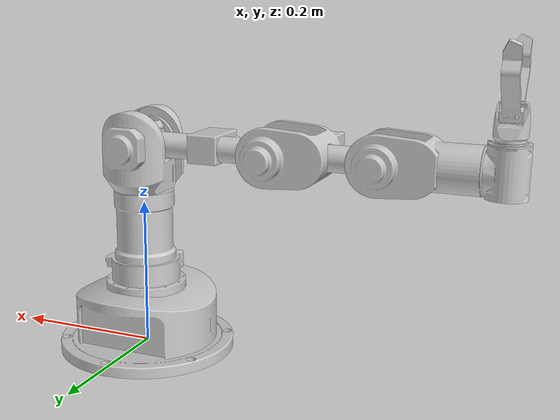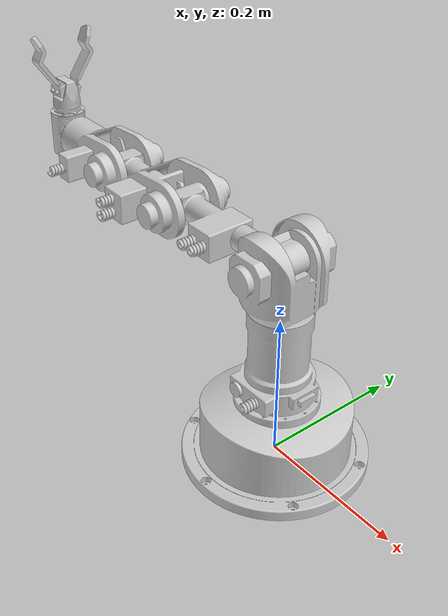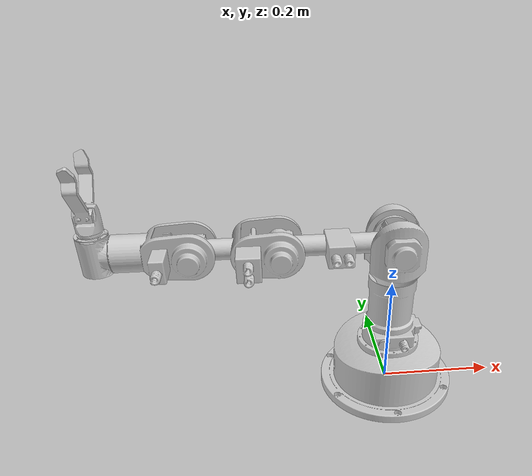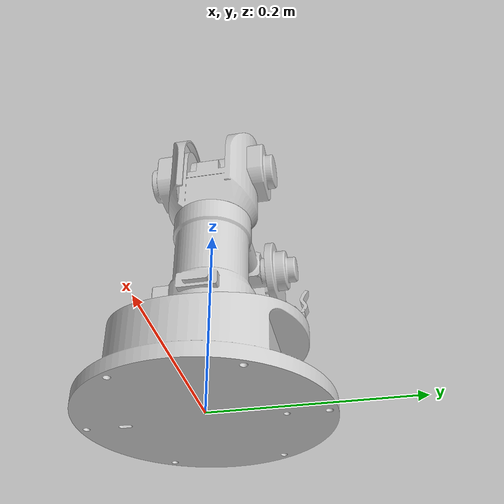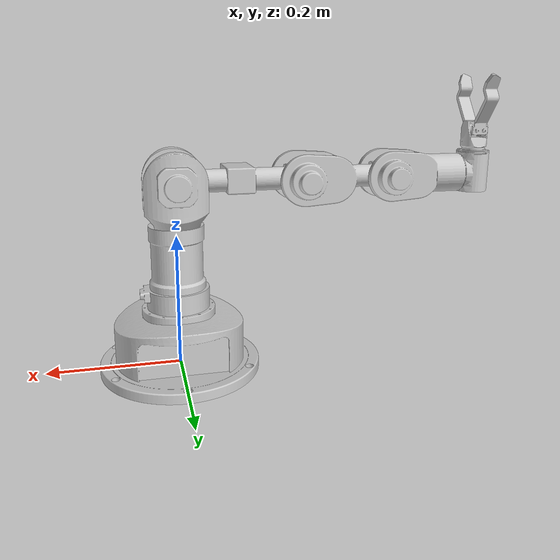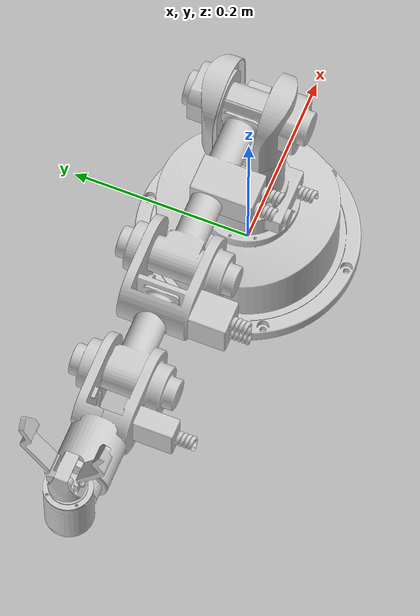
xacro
<?xml version="1.0"?>

<robot xmlns:sensor="http://playerstage.sourceforge.net/gazebo/xmlschema/#sensor"
       xmlns:controller="http://playerstage.sourceforge.net/gazebo/xmlschema/#controller"
       xmlns:interface="http://playerstage.sourceforge.net/gazebo/xmlschema/#interface"
       xmlns:xacro="http://ros.org/wiki/xacro"
       name="katana">

  <include filename="$(find katana_description)/urdf/transmissions.urdf.xacro"/>
  <include filename="$(find katana_description)/urdf/gazebo.urdf.xacro"/>

  <property name="M_PI" value="3.1415926535897931" />

  <!-- all values from the katana manual -->
  <property name="controlbox_height" value="0.08" />
  <property name="base_height" value="0.2015" />
  <property name="link2_length" value="0.19" />
  <property name="link3_length" value="0.139" />
  <property name="link4_length" value="0.1473" />
  <property name="link5_length" value="0.1505" />

  <!-- All inertial values (mass, center of mass and inertia tensor) have been
       calculated from the meshes using MeshLab -->
  <!-- the effort limits have been measured experimentally from the maximum effort the Gazebo controller
       uses in normal conditions -->

  <link name="katana_internal_controlbox_link">
    <visual>
      <origin xyz="0 0 0" rpy="0 0 0" />
      <geometry>
        <mesh filename="package://katana_description/meshes/katana/katana_internal_controlbox.stl" />
      </geometry>

      <material name="grey">
        <color rgba="0.8 0.8 0.8 1"/>
      </material>
    </visual>
    <collision>
      <origin xyz="0 0 0" rpy="0 0 0" />
      <geometry>
        <mesh filename="package://katana_description/meshes/katana/convex/katana_internal_controlbox_convex.stlb" />
      </geometry>
    </collision>
    <inertial>
      <mass value="4.47057045" />
      <origin xyz="0.000024 -0.006508 0.030555" />
      <inertia ixx="0.013760086" ixy="-0.000000539" ixz="-0.000000442"
        iyy="0.015251808" iyz="0.000361753"
        izz="0.023409309" />
    </inertial>
  </link>

  <joint name="katana_base_joint" type="fixed">
    <parent link="katana_internal_controlbox_link"/>
    <child link="katana_base_link"/>
    <origin xyz="0 0 ${controlbox_height}"/>
  </joint>

  <link name="katana_base_link">
    <visual>
      <origin xyz="0 0 0" rpy="0 0 ${M_PI}" />
      <geometry>
        <mesh filename="package://katana_description/meshes/katana/katana_base_link.stl"/>
      </geometry>

      <material name="grey" />
    </visual>
    <collision>
      <origin xyz="0 0 0" rpy="0 0 ${M_PI}" />
      <geometry>
        <mesh filename="package://katana_description/meshes/katana/convex/katana_base_link_convex.stlb"/>
      </geometry>
    </collision>
    <inertial>
      <mass value="1.4047990875" />
      <origin xyz="-0.000327 0.000908 0.058457"/>
      <inertia ixx="0.003000703" ixy="0.000000864" ixz="-0.000011312"
        iyy="0.002974822" iyz="0.000036294"
        izz="0.001434739" />
    </inertial>
  </link>

  <joint name="katana_motor1_pan_joint" type="revolute">
    <!-- Joint 1 in Katana Manual -->
    <parent link="katana_base_link"/>
    <child link="katana_motor1_pan_link" />
    <origin xyz="0 0 ${base_height}" rpy="0 0 ${M_PI}"/>
    <axis xyz="0 0 1"/>
    <limit effort="1.5" lower="-3.025528" upper="2.891097" velocity="2.208932"/>
  </joint>

  <link name="katana_motor1_pan_link">
    <visual>
      <origin xyz="0 0 ${-base_height}" rpy="0 0 0" />
      <geometry>
        <mesh filename="package://katana_description/meshes/katana/katana_motor1_pan_link.stl"/>
      </geometry>

      <material name="grey" />
    </visual>
    <collision>
      <origin xyz="0 0 ${-base_height}" rpy="0 0 0" />
      <geometry>
        <mesh filename="package://katana_description/meshes/katana/convex/katana_motor1_pan_link_convex.stlb"/>
      </geometry>
    </collision>
    <inertial>
      <mass value="0.74793301875" />
      <origin xyz="-0.000410 -0.001285 -0.016774" />
      <inertia ixx="0.001737241" ixy="0.000000421" ixz="0.000000650"
        iyy="0.000998782" iyz="0.000016114"
        izz="0.001349170" />
    </inertial>
  </link>

  <joint name="katana_motor2_lift_joint" type="revolute">
    <!-- Joint 2 in Katana Manual -->
    <parent link="katana_motor1_pan_link" />
    <child link="katana_motor2_lift_link" />
    <origin xyz="0 0 0" rpy="${M_PI/2} 0 0"/>
    <axis xyz="0 0 1"/>
    <limit effort="0.6" lower="-0.135228" upper="2.168572"  velocity="1.190799"/>
  </joint>

  <link name="katana_motor2_lift_link">
      <visual>
        <origin rpy="${-M_PI/2} 0 0" xyz="0 0 0"/>
        <geometry>
          <mesh filename="package://katana_description/meshes/katana/katana_motor2_lift_link.stl"/>
        </geometry>

        <material name="grey" />
      </visual>
      <collision>
        <origin rpy="${-M_PI/2} 0 0" xyz="0 0 0"/>
        <geometry>
          <mesh filename="package://katana_description/meshes/katana/convex/katana_motor2_lift_link_convex.stlb"/>
        </geometry>
      </collision>
      <inertial>
        <mass value="0.80174941875" />
        <origin xyz="0.092420 0.005283 0.000172"/>
        <inertia ixx="0.000478252" ixy="0.000081166" ixz="0.000003961"
          iyy="0.004314636" iyz="0.000000332"
          izz="0.004625444" />
      </inertial>
  </link>

  <joint name="katana_motor3_lift_joint" type="revolute">
    <!-- Joint 3 in Katana Manual -->
    <parent link="katana_motor2_lift_link" />
    <child  link="katana_motor3_lift_link" />
    <origin xyz="${link2_length} 0 0" rpy="0 0 0"/>
    <axis xyz="0 0 1"/>
    <!-- unexplicably, the measured velocity limit of this motor is exactly half of what vel_enc2rad(180) says -->
    <limit effort="0.25" lower="-2.221804" upper="2.054223"  velocity="1.190799"/>
  </joint>

  <link name="katana_motor3_lift_link">
      <visual>
        <origin rpy="${-M_PI/2} 0 0" xyz="0 0 0"/>
        <geometry>
          <mesh filename="package://katana_description/meshes/katana/katana_motor3_lift_link.stl"/>
        </geometry>

        <material name="grey" />
      </visual>
      <collision>
        <origin rpy="${-M_PI/2} 0 0" xyz="0 0 0"/>
        <geometry>
          <mesh filename="package://katana_description/meshes/katana/convex/katana_motor3_lift_link_convex.stlb"/>
        </geometry>
      </collision>
      <inertial>
        <mass value="0.79241664375" />
        <origin xyz="0.058036 0.008963 -0.000187"/>
        <inertia ixx="0.001156089" ixy="0.000112877" ixz="-0.000004398"
          iyy="0.002305646" iyz="-0.000000036"
          izz="0.003128648" />
      </inertial>
    </link>

  <joint name="katana_motor4_lift_joint" type="revolute">
    <!-- Joint 4 in Katana Manual -->
    <parent link="katana_motor3_lift_link" />
    <child  link="katana_motor4_lift_link" />
    <origin rpy="${M_PI} 0 0" xyz="${link3_length} 0 0"/>
    <axis xyz="0 0 1"/>
    <limit effort="0.1" lower="-2.033309" upper="1.876133"  velocity="2.208932"/>
  </joint>

  <link name="katana_motor4_lift_link">
      <visual>
        <origin rpy="${M_PI/2} 0 0" xyz="0 0 0"/>
        <geometry>
          <mesh filename="package://katana_description/meshes/katana/katana_motor4_lift_link.stl"/>
        </geometry>

        <material name="grey" />
      </visual>
      <collision>
        <origin rpy="${M_PI/2} 0 0" xyz="0 0 0"/>
        <geometry>
          <mesh filename="package://katana_description/meshes/katana/convex/katana_motor4_lift_link_convex.stlb"/>
        </geometry>
      </collision>
      <inertial>
        <mass value="0.69149323125" />
        <origin xyz="0.050401 0.005807 0.000000"/>
        <inertia ixx="0.000765999" ixy="0.000045260" ixz="-0.000001210"
          iyy="0.001504115" iyz="0.000000147"
          izz="0.001887277" />
      </inertial>
    </link>

  <joint name="katana_motor5_wrist_roll_joint" type="revolute">
    <!-- Joint 5 in Katana Manual -->
    <parent link="katana_motor4_lift_link" />
    <child  link="katana_motor5_wrist_roll_link" />
    <origin rpy="${M_PI/2} 0 ${-M_PI/2}" xyz="${link4_length} 0 0"/>
    <axis xyz="0 0 1"/>
    <limit effort="0.01" lower="-2.993240" upper="2.870985"  velocity="2.208932"/>
  </joint>

  <link name="katana_motor5_wrist_roll_link">
      <visual>
        <origin rpy="0 ${M_PI/2} 0" xyz="0 0 0"/>
        <geometry>
          <mesh filename="package://katana_description/meshes/katana/katana_motor5_wrist_roll_link.stl"/>
        </geometry>

        <material name="grey" />
      </visual>
      <collision>
        <origin rpy="0 ${M_PI/2} 0" xyz="0 0 0"/>
        <geometry>
          <mesh filename="package://katana_description/meshes/katana/convex/katana_motor5_wrist_roll_link_convex.stlb"/>
        </geometry>
      </collision>
      <inertial>
        <mass value="0.25622555625" />
        <origin xyz="-0.003140899 0.000013920 0.001680144"/>
        <inertia ixx="0.000120481" ixy="0.000000015" ixz="-0.000001089"
          iyy="0.000132130" iyz="-0.000000124"
          izz="0.000093522" />
      </inertial>
    </link>

  <joint name="katana_gripper_joint" type="fixed">
    <parent link="katana_motor5_wrist_roll_link" />
    <child link="katana_gripper_link" />
    <origin rpy="0 0 0" xyz="0.0323 0 0"/>
  </joint>

  <link name="katana_gripper_link">
      <visual>
        <origin rpy="0 ${M_PI} 0" xyz="0 0 0"/>
        <geometry>
          <mesh filename="package://katana_description/meshes/katana/katana_gripper_link.stl"/>
        </geometry>

        <material name="grey" />
      </visual>
      <collision>
        <origin rpy="0 ${M_PI} 0" xyz="0 0 0"/>
        <geometry>
          <mesh filename="package://katana_description/meshes/katana/convex/katana_gripper_link_convex.stlb"/>
        </geometry>
      </collision>
      <inertial>
        <mass value="0.0552136183596" />
        <origin xyz="-0.014379 -0.000000 0.000006"/>
        <inertia ixx="0.000011468" ixy="0.000000000" ixz="0.000000007"
          iyy="0.000013830" iyz="0.000000000"
          izz="0.000011290" /></inertial>
    </link>

  <xacro:macro name="finger" params="prefix rotate">
    <joint name="katana_${prefix}_finger_joint" type="revolute">
      <parent link="katana_gripper_link" />
      <child  link="katana_${prefix}_finger_link" />
      <origin rpy="${rotate} 0 0" xyz="0.034 0 0"/>
      <axis xyz="0 0 1"/>
      <limit effort="0.5" lower="-0.44" upper="0.30"  velocity="0.718834"/>
   </joint>

    <link name="katana_${prefix}_finger_link">
        <visual>
          <origin rpy="0 ${M_PI} 0" xyz="0 0 0"/>
          <geometry>
            <mesh filename="package://katana_description/meshes/katana/katana_gripper_${prefix}_finger.stl"/>
          </geometry>

          <material name="grey" />
        </visual>
        <collision>
          <origin rpy="0 ${M_PI} 0" xyz="0 0 0"/>
          <geometry>
            <mesh filename="package://katana_description/meshes/katana/convex/katana_gripper_${prefix}_finger_convex.stlb"/>
          </geometry>
        </collision>
        <inertial>
          <mass value="0.0251722230462" />
          <origin xyz="${0.034 + (-0.032216)} 0.025167 -.001603"/>
          <inertia ixx="0.000005990" ixy="0.000008473" ixz="0.000001448"
            iyy="0.000019757" iyz="-0.000000996"
            izz="0.000023588" />
        </inertial>
      </link>
    </xacro:macro>

  <xacro:finger prefix="r" rotate="0" />
  <xacro:finger prefix="l" rotate="${M_PI}" />

  <joint name="katana_gripper_tool_frame_joint" type="fixed">
    <parent link="katana_motor5_wrist_roll_link"/>
    <child link="katana_gripper_tool_frame" />
    <origin xyz="${link5_length} 0 0" rpy="0 ${M_PI/2} 0"/>
  </joint>

  <link name="katana_gripper_tool_frame">
    <!-- This is the coordinate system of the tool (this is the position
         used in IK etc., relative to the base frame); there is no actual
         arm part attached to this link -->
  </link>

  <joint name="katana_base_frame_joint" type="fixed">
    <parent link="katana_base_link"/>
    <child link="katana_base_frame" />
    <origin xyz="0 0 ${base_height}" rpy="0 0 ${M_PI}"/>
  </joint>

  <link name="katana_base_frame">
    <!-- This is the reference coordinate system of the arm (the KNI kinematics are specified
         in this frame); there is no actual arm part attached to this link -->
  </link>

</robot>
